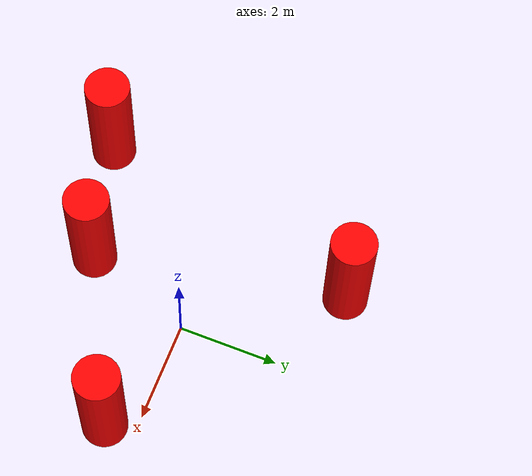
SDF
<sdf version='1.7'>
  <world name='default'>

    <!-- 场景说明: 10x10 地图 (X: [-5,5], Y: [-5,5])                -->
    <!-- 仅动态障碍物: 4 个动态圆柱                                  -->
    <!-- 障碍物尺寸按原始参考大小 1.5 倍                             -->

    <!-- 1.5 倍尺寸: radius=0.45, length=2.55, z=1.275 -->

    <!-- 动态0: 沿 X 往返 (-3.2,-2.8) <-> (1.8,-2.8) -->
    <model name='dynamic_cylinder_0_0.9_0.9_2.55'>
      <static>true</static>
      <pose>-3.2 -2.8 1.275 0 0 0</pose>
      <link name='link'>
        <visual name='visual'>
          <geometry>
            <cylinder>
              <radius>0.45</radius>
              <length>2.55</length>
            </cylinder>
          </geometry>
          <material>
            <ambient>1 0 0 1</ambient>
            <diffuse>1 0 0 1</diffuse>
            <specular>0.5 0.5 0.5 1</specular>
          </material>
        </visual>
      </link>
      <plugin name="obstacle_motion" filename="libobstaclePathPlugin.so">
        <orientation>false</orientation>
        <loop>1</loop>
        <velocity>0.0</velocity>
        <path>
          <waypoint>-3.2 -2.8 1.275</waypoint>
          <waypoint>-3.2 -2.8 1.275</waypoint>
        </path>
      </plugin>
    </model>

    <!-- 动态1: 沿 Y 往返 (-0.8,-2.2) <-> (-0.8,2.2) -->
    <model name='dynamic_cylinder_1_0.9_0.9_2.55'>
      <static>true</static>
      <pose>-0.8 -2.2 1.275 0 0 0</pose>
      <link name='link'>
        <visual name='visual'>
          <geometry>
            <cylinder>
              <radius>0.45</radius>
              <length>2.55</length>
            </cylinder>
          </geometry>
          <material>
            <ambient>1 0 0 1</ambient>
            <diffuse>1 0 0 1</diffuse>
            <specular>0.5 0.5 0.5 1</specular>
          </material>
        </visual>
      </link>
      <plugin name="obstacle_motion" filename="libobstaclePathPlugin.so">
        <orientation>false</orientation>
        <loop>1</loop>
        <velocity>0.0</velocity>
        <path>
          <waypoint>-0.8 -2.2 1.275</waypoint>
          <waypoint>-0.8 -2.2 1.275</waypoint>
        </path>
      </plugin>
    </model>

    <!-- 动态2: 斜向往返 (2.4,-0.6) <-> (-1.2,2.0) -->
    <model name='dynamic_cylinder_2_0.9_0.9_2.55'>
      <static>true</static>
      <pose>2.4 -0.6 1.275 0 0 0</pose>
      <link name='link'>
        <visual name='visual'>
          <geometry>
            <cylinder>
              <radius>0.45</radius>
              <length>2.55</length>
            </cylinder>
          </geometry>
          <material>
            <ambient>1 0 0 1</ambient>
            <diffuse>1 0 0 1</diffuse>
            <specular>0.5 0.5 0.5 1</specular>
          </material>
        </visual>
      </link>
      <plugin name="obstacle_motion" filename="libobstaclePathPlugin.so">
        <orientation>false</orientation>
        <loop>1</loop>
        <velocity>0.0</velocity>
        <path>
          <waypoint>2.4 -0.6 1.275</waypoint>
          <waypoint>2.4 -0.6 1.275</waypoint>
        </path>
      </plugin>
    </model>

    <!-- 动态3: 沿 X 往返 (-1.8,2.8) <-> (2.4,2.8) -->
    <model name='dynamic_cylinder_3_0.9_0.9_2.55'>
      <static>true</static>
      <pose>-1.8 2.8 1.275 0 0 0</pose>
      <link name='link'>
        <visual name='visual'>
          <geometry>
            <cylinder>
              <radius>0.45</radius>
              <length>2.55</length>
            </cylinder>
          </geometry>
          <material>
            <ambient>1 0 0 1</ambient>
            <diffuse>1 0 0 1</diffuse>
            <specular>0.5 0.5 0.5 1</specular>
          </material>
        </visual>
      </link>
      <plugin name="obstacle_motion" filename="libobstaclePathPlugin.so">
        <orientation>false</orientation>
        <loop>1</loop>
        <velocity>0.0</velocity>
        <path>
          <waypoint>-1.8 2.8 1.275</waypoint>
          <waypoint>-1.8 2.8 1.275</waypoint>
        </path>
      </plugin>
    </model>

    <light name='sun' type='directional'>
      <cast_shadows>1</cast_shadows>
      <pose>0 0 10 0 -0 0</pose>
      <diffuse>0.8 0.8 0.8 1</diffuse>
      <specular>0.2 0.2 0.2 1</specular>
      <attenuation>
        <range>1000</range>
        <constant>0.9</constant>
        <linear>0.01</linear>
        <quadratic>0.001</quadratic>
      </attenuation>
      <direction>-0.5 0.1 -0.9</direction>
      <spot>
        <inner_angle>0</inner_angle>
        <outer_angle>0</outer_angle>
        <falloff>0</falloff>
      </spot>
    </light>

    <model name='ground_plane'>
      <static>1</static>
      <link name='link'>
        <collision name='collision'>
          <geometry>
            <plane>
              <normal>0 0 1</normal>
              <size>100 100</size>
            </plane>
          </geometry>
        </collision>
      </link>
    </model>

    <physics type='ode'>
      <max_step_size>0.001</max_step_size>
      <real_time_factor>1</real_time_factor>
      <real_time_update_rate>1000</real_time_update_rate>
    </physics>

    <scene>
      <ambient>0.4 0.4 0.4 1</ambient>
      <background>0.7 0.7 0.7 1</background>
      <shadows>1</shadows>
    </scene>

    <gui fullscreen='0'>
      <camera name='user_camera'>
        <pose>6.39292 -16.0551 24.6198 0 0.913797 2.1162</pose>
        <view_controller>orbit</view_controller>
        <projection_type>perspective</projection_type>
      </camera>
    </gui>
  </world>
</sdf>
